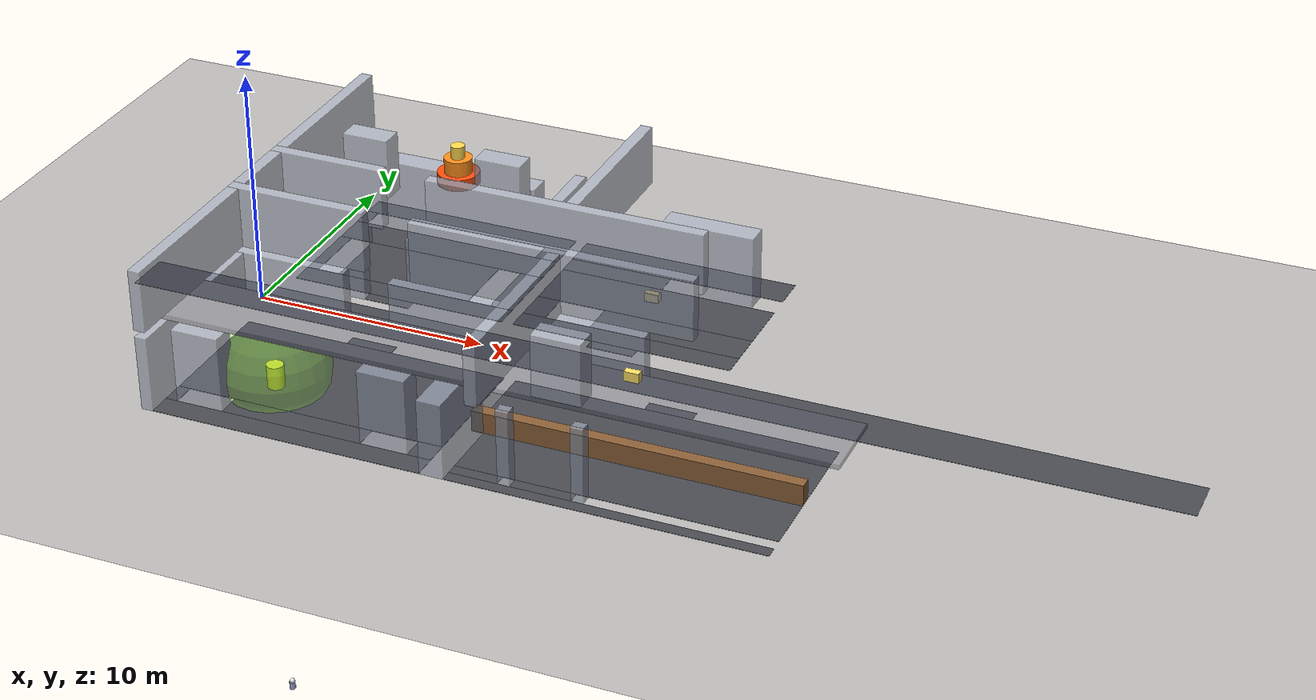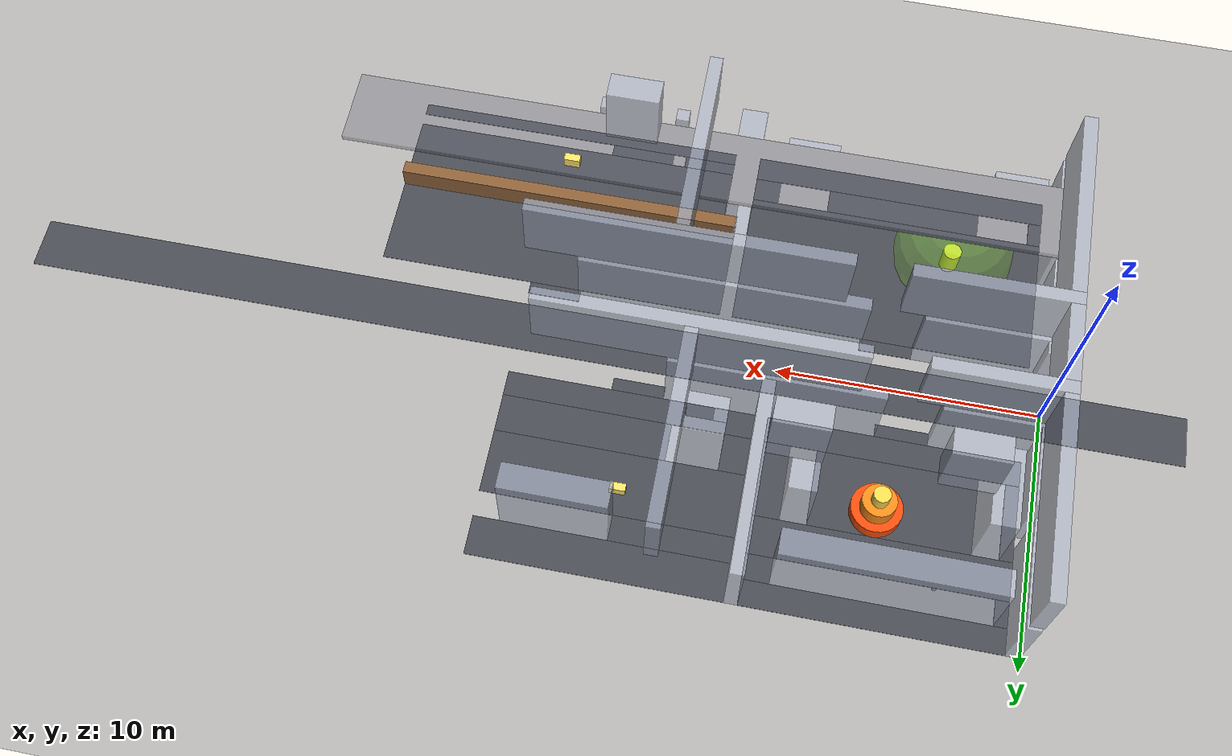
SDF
<sdf version="1.9">
 <world name="living_map_fire">
  <model name="ground">
   <static>true</static>
   <link name="l">
    <collision name="c"><geometry><plane><normal>0 0 1</normal><size>120 80</size></plane></geometry></collision>
    <visual name="v">
     <geometry><plane><normal>0 0 1</normal><size>120 80</size></plane></geometry>
     <material><ambient>0.16 0.17 0.2 1.0</ambient><diffuse>0.16 0.17 0.2 1.0</diffuse></material>
    </visual>
   </link>
  </model>
  <model name="slab0_0">
   <static>true</static>
   <pose>6.250 -9.000 0.010 0 0 0</pose>
   <link name="l">
    <collision name="c"><geometry><box><size>11.500 1.000 0.020</size></box></geometry></collision>
    <visual name="v">
     <geometry><box><size>11.500 1.000 0.020</size></box></geometry>
     <material><ambient>0.28 0.29 0.32 1.0</ambient><diffuse>0.28 0.29 0.32 1.0</diffuse></material>
    </visual>
   </link>
  </model>
  <model name="slab0_1">
   <static>true</static>
   <pose>19.500 -9.250 0.010 0 0 0</pose>
   <link name="l">
    <collision name="c"><geometry><box><size>13.000 0.500 0.020</size></box></geometry></collision>
    <visual name="v">
     <geometry><box><size>13.000 0.500 0.020</size></box></geometry>
     <material><ambient>0.28 0.29 0.32 1.0</ambient><diffuse>0.28 0.29 0.32 1.0</diffuse></material>
    </visual>
   </link>
  </model>
  <model name="slab0_4">
   <static>true</static>
   <pose>14.000 -8.750 0.010 0 0 0</pose>
   <link name="l">
    <collision name="c"><geometry><box><size>2.000 0.500 0.020</size></box></geometry></collision>
    <visual name="v">
     <geometry><box><size>2.000 0.500 0.020</size></box></geometry>
     <material><ambient>0.28 0.29 0.32 1.0</ambient><diffuse>0.28 0.29 0.32 1.0</diffuse></material>
    </visual>
   </link>
  </model>
  <model name="slab0_5">
   <static>true</static>
   <pose>16.750 -8.750 0.010 0 0 0</pose>
   <link name="l">
    <collision name="c"><geometry><box><size>2.500 0.500 0.020</size></box></geometry></collision>
    <visual name="v">
     <geometry><box><size>2.500 0.500 0.020</size></box></geometry>
     <material><ambient>0.28 0.29 0.32 1.0</ambient><diffuse>0.28 0.29 0.32 1.0</diffuse></material>
    </visual>
   </link>
  </model>
  <model name="slab0_9">
   <static>true</static>
   <pose>0.750 -8.000 0.010 0 0 0</pose>
   <link name="l">
    <collision name="c"><geometry><box><size>0.500 1.000 0.020</size></box></geometry></collision>
    <visual name="v">
     <geometry><box><size>0.500 1.000 0.020</size></box></geometry>
     <material><ambient>0.28 0.29 0.32 1.0</ambient><diffuse>0.28 0.29 0.32 1.0</diffuse></material>
    </visual>
   </link>
  </model>
  <model name="slab0_10">
   <static>true</static>
   <pose>6.000 -8.000 0.010 0 0 0</pose>
   <link name="l">
    <collision name="c"><geometry><box><size>6.000 1.000 0.020</size></box></geometry></collision>
    <visual name="v">
     <geometry><box><size>6.000 1.000 0.020</size></box></geometry>
     <material><ambient>0.28 0.29 0.32 1.0</ambient><diffuse>0.28 0.29 0.32 1.0</diffuse></material>
    </visual>
   </link>
  </model>
  <model name="slab0_11">
   <static>true</static>
   <pose>11.500 -8.000 0.010 0 0 0</pose>
   <link name="l">
    <collision name="c"><geometry><box><size>1.000 1.000 0.020</size></box></geometry></collision>
    <visual name="v">
     <geometry><box><size>1.000 1.000 0.020</size></box></geometry>
     <material><ambient>0.28 0.29 0.32 1.0</ambient><diffuse>0.28 0.29 0.32 1.0</diffuse></material>
    </visual>
   </link>
  </model>
  <model name="slab0_12">
   <static>true</static>
   <pose>19.500 -7.250 0.010 0 0 0</pose>
   <link name="l">
    <collision name="c"><geometry><box><size>13.000 2.500 0.020</size></box></geometry></collision>
    <visual name="v">
     <geometry><box><size>13.000 2.500 0.020</size></box></geometry>
     <material><ambient>0.28 0.29 0.32 1.0</ambient><diffuse>0.28 0.29 0.32 1.0</diffuse></material>
    </visual>
   </link>
  </model>
  <model name="slab0_16">
   <static>true</static>
   <pose>6.250 -4.750 0.010 0 0 0</pose>
   <link name="l">
    <collision name="c"><geometry><box><size>11.500 5.500 0.020</size></box></geometry></collision>
    <visual name="v">
     <geometry><box><size>11.500 5.500 0.020</size></box></geometry>
     <material><ambient>0.28 0.29 0.32 1.0</ambient><diffuse>0.28 0.29 0.32 1.0</diffuse></material>
    </visual>
   </link>
  </model>
  <model name="slab0_17">
   <static>true</static>
   <pose>19.250 -4.000 0.010 0 0 0</pose>
   <link name="l">
    <collision name="c"><geometry><box><size>13.500 4.000 0.020</size></box></geometry></collision>
    <visual name="v">
     <geometry><box><size>13.500 4.000 0.020</size></box></geometry>
     <material><ambient>0.28 0.29 0.32 1.0</ambient><diffuse>0.28 0.29 0.32 1.0</diffuse></material>
    </visual>
   </link>
  </model>
  <model name="slab0_21">
   <static>true</static>
   <pose>6.000 -1.750 0.010 0 0 0</pose>
   <link name="l">
    <collision name="c"><geometry><box><size>2.000 0.500 0.020</size></box></geometry></collision>
    <visual name="v">
     <geometry><box><size>2.000 0.500 0.020</size></box></geometry>
     <material><ambient>0.28 0.29 0.32 1.0</ambient><diffuse>0.28 0.29 0.32 1.0</diffuse></material>
    </visual>
   </link>
  </model>
  <model name="slab0_22">
   <static>true</static>
   <pose>19.000 -1.750 0.010 0 0 0</pose>
   <link name="l">
    <collision name="c"><geometry><box><size>2.000 0.500 0.020</size></box></geometry></collision>
    <visual name="v">
     <geometry><box><size>2.000 0.500 0.020</size></box></geometry>
     <material><ambient>0.28 0.29 0.32 1.0</ambient><diffuse>0.28 0.29 0.32 1.0</diffuse></material>
    </visual>
   </link>
  </model>
  <model name="slab0_26">
   <static>true</static>
   <pose>17.000 0.000 0.010 0 0 0</pose>
   <link name="l">
    <collision name="c"><geometry><box><size>45.000 2.000 0.020</size></box></geometry></collision>
    <visual name="v">
     <geometry><box><size>45.000 2.000 0.020</size></box></geometry>
     <material><ambient>0.28 0.29 0.32 1.0</ambient><diffuse>0.28 0.29 0.32 1.0</diffuse></material>
    </visual>
   </link>
  </model>
  <model name="slab0_29">
   <static>true</static>
   <pose>5.000 1.750 0.010 0 0 0</pose>
   <link name="l">
    <collision name="c"><geometry><box><size>2.000 0.500 0.020</size></box></geometry></collision>
    <visual name="v">
     <geometry><box><size>2.000 0.500 0.020</size></box></geometry>
     <material><ambient>0.28 0.29 0.32 1.0</ambient><diffuse>0.28 0.29 0.32 1.0</diffuse></material>
    </visual>
   </link>
  </model>
  <model name="slab0_30">
   <static>true</static>
   <pose>15.000 1.750 0.010 0 0 0</pose>
   <link name="l">
    <collision name="c"><geometry><box><size>2.000 0.500 0.020</size></box></geometry></collision>
    <visual name="v">
     <geometry><box><size>2.000 0.500 0.020</size></box></geometry>
     <material><ambient>0.28 0.29 0.32 1.0</ambient><diffuse>0.28 0.29 0.32 1.0</diffuse></material>
    </visual>
   </link>
  </model>
  <model name="slab0_33">
   <static>true</static>
   <pose>5.250 2.500 0.010 0 0 0</pose>
   <link name="l">
    <collision name="c"><geometry><box><size>9.500 1.000 0.020</size></box></geometry></collision>
    <visual name="v">
     <geometry><box><size>9.500 1.000 0.020</size></box></geometry>
     <material><ambient>0.28 0.29 0.32 1.0</ambient><diffuse>0.28 0.29 0.32 1.0</diffuse></material>
    </visual>
   </link>
  </model>
  <model name="slab0_34">
   <static>true</static>
   <pose>15.250 2.500 0.010 0 0 0</pose>
   <link name="l">
    <collision name="c"><geometry><box><size>9.500 1.000 0.020</size></box></geometry></collision>
    <visual name="v">
     <geometry><box><size>9.500 1.000 0.020</size></box></geometry>
     <material><ambient>0.28 0.29 0.32 1.0</ambient><diffuse>0.28 0.29 0.32 1.0</diffuse></material>
    </visual>
   </link>
  </model>
  <model name="slab0_37">
   <static>true</static>
   <pose>0.750 4.500 0.010 0 0 0</pose>
   <link name="l">
    <collision name="c"><geometry><box><size>0.500 3.000 0.020</size></box></geometry></collision>
    <visual name="v">
     <geometry><box><size>0.500 3.000 0.020</size></box></geometry>
     <material><ambient>0.28 0.29 0.32 1.0</ambient><diffuse>0.28 0.29 0.32 1.0</diffuse></material>
    </visual>
   </link>
  </model>
  <model name="slab0_38">
   <static>true</static>
   <pose>5.000 4.500 0.010 0 0 0</pose>
   <link name="l">
    <collision name="c"><geometry><box><size>6.000 3.000 0.020</size></box></geometry></collision>
    <visual name="v">
     <geometry><box><size>6.000 3.000 0.020</size></box></geometry>
     <material><ambient>0.28 0.29 0.32 1.0</ambient><diffuse>0.28 0.29 0.32 1.0</diffuse></material>
    </visual>
   </link>
  </model>
  <model name="slab0_39">
   <static>true</static>
   <pose>9.500 4.500 0.010 0 0 0</pose>
   <link name="l">
    <collision name="c"><geometry><box><size>1.000 3.000 0.020</size></box></geometry></collision>
    <visual name="v">
     <geometry><box><size>1.000 3.000 0.020</size></box></geometry>
     <material><ambient>0.28 0.29 0.32 1.0</ambient><diffuse>0.28 0.29 0.32 1.0</diffuse></material>
    </visual>
   </link>
  </model>
  <model name="slab0_40">
   <static>true</static>
   <pose>11.000 3.750 0.010 0 0 0</pose>
   <link name="l">
    <collision name="c"><geometry><box><size>1.000 1.500 0.020</size></box></geometry></collision>
    <visual name="v">
     <geometry><box><size>1.000 1.500 0.020</size></box></geometry>
     <material><ambient>0.28 0.29 0.32 1.0</ambient><diffuse>0.28 0.29 0.32 1.0</diffuse></material>
    </visual>
   </link>
  </model>
  <model name="slab0_41">
   <static>true</static>
   <pose>16.750 3.750 0.010 0 0 0</pose>
   <link name="l">
    <collision name="c"><geometry><box><size>6.500 1.500 0.020</size></box></geometry></collision>
    <visual name="v">
     <geometry><box><size>6.500 1.500 0.020</size></box></geometry>
     <material><ambient>0.28 0.29 0.32 1.0</ambient><diffuse>0.28 0.29 0.32 1.0</diffuse></material>
    </visual>
   </link>
  </model>
  <model name="slab0_49">
   <static>true</static>
   <pose>15.250 5.750 0.010 0 0 0</pose>
   <link name="l">
    <collision name="c"><geometry><box><size>9.500 2.500 0.020</size></box></geometry></collision>
    <visual name="v">
     <geometry><box><size>9.500 2.500 0.020</size></box></geometry>
     <material><ambient>0.28 0.29 0.32 1.0</ambient><diffuse>0.28 0.29 0.32 1.0</diffuse></material>
    </visual>
   </link>
  </model>
  <model name="slab0_52">
   <static>true</static>
   <pose>5.250 6.750 0.010 0 0 0</pose>
   <link name="l">
    <collision name="c"><geometry><box><size>9.500 1.500 0.020</size></box></geometry></collision>
    <visual name="v">
     <geometry><box><size>9.500 1.500 0.020</size></box></geometry>
     <material><ambient>0.28 0.29 0.32 1.0</ambient><diffuse>0.28 0.29 0.32 1.0</diffuse></material>
    </visual>
   </link>
  </model>
  <model name="slab0_53">
   <static>true</static>
   <pose>12.750 7.500 0.010 0 0 0</pose>
   <link name="l">
    <collision name="c"><geometry><box><size>4.500 1.000 0.020</size></box></geometry></collision>
    <visual name="v">
     <geometry><box><size>4.500 1.000 0.020</size></box></geometry>
     <material><ambient>0.28 0.29 0.32 1.0</ambient><diffuse>0.28 0.29 0.32 1.0</diffuse></material>
    </visual>
   </link>
  </model>
  <model name="slab0_55">
   <static>true</static>
   <pose>0.750 8.000 0.010 0 0 0</pose>
   <link name="l">
    <collision name="c"><geometry><box><size>0.500 1.000 0.020</size></box></geometry></collision>
    <visual name="v">
     <geometry><box><size>0.500 1.000 0.020</size></box></geometry>
     <material><ambient>0.28 0.29 0.32 1.0</ambient><diffuse>0.28 0.29 0.32 1.0</diffuse></material>
    </visual>
   </link>
  </model>
  <model name="slab0_56">
   <static>true</static>
   <pose>9.500 8.000 0.010 0 0 0</pose>
   <link name="l">
    <collision name="c"><geometry><box><size>1.000 1.000 0.020</size></box></geometry></collision>
    <visual name="v">
     <geometry><box><size>1.000 1.000 0.020</size></box></geometry>
     <material><ambient>0.28 0.29 0.32 1.0</ambient><diffuse>0.28 0.29 0.32 1.0</diffuse></material>
    </visual>
   </link>
  </model>
  <model name="slab0_57">
   <static>true</static>
   <pose>15.250 8.750 0.010 0 0 0</pose>
   <link name="l">
    <collision name="c"><geometry><box><size>9.500 1.500 0.020</size></box></geometry></collision>
    <visual name="v">
     <geometry><box><size>9.500 1.500 0.020</size></box></geometry>
     <material><ambient>0.28 0.29 0.32 1.0</ambient><diffuse>0.28 0.29 0.32 1.0</diffuse></material>
    </visual>
   </link>
  </model>
  <model name="slab0_60">
   <static>true</static>
   <pose>5.250 9.000 0.010 0 0 0</pose>
   <link name="l">
    <collision name="c"><geometry><box><size>9.500 1.000 0.020</size></box></geometry></collision>
    <visual name="v">
     <geometry><box><size>9.500 1.000 0.020</size></box></geometry>
     <material><ambient>0.28 0.29 0.32 1.0</ambient><diffuse>0.28 0.29 0.32 1.0</diffuse></material>
    </visual>
   </link>
  </model>
  <model name="wall0_1">
   <static>true</static>
   <pose>0.250 -7.500 1.600 0 0 0</pose>
   <link name="l">
    <collision name="c"><geometry><box><size>0.500 4.000 3.200</size></box></geometry></collision>
    <visual name="v">
     <geometry><box><size>0.500 4.000 3.200</size></box></geometry>
     <material><ambient>0.62 0.65 0.72 0.75</ambient><diffuse>0.62 0.65 0.72 0.75</diffuse></material>
    </visual>
   </link>
  </model>
  <model name="wall0_2">
   <static>true</static>
   <pose>12.500 -7.750 1.600 0 0 0</pose>
   <link name="l">
    <collision name="c"><geometry><box><size>1.000 3.500 3.200</size></box></geometry></collision>
    <visual name="v">
     <geometry><box><size>1.000 3.500 3.200</size></box></geometry>
     <material><ambient>0.62 0.65 0.72 0.75</ambient><diffuse>0.62 0.65 0.72 0.75</diffuse></material>
    </visual>
   </link>
  </model>
  <model name="wall0_6">
   <static>true</static>
   <pose>15.250 -8.750 1.600 0 0 0</pose>
   <link name="l">
    <collision name="c"><geometry><box><size>0.500 0.500 3.200</size></box></geometry></collision>
    <visual name="v">
     <geometry><box><size>0.500 0.500 3.200</size></box></geometry>
     <material><ambient>0.62 0.65 0.72 0.75</ambient><diffuse>0.62 0.65 0.72 0.75</diffuse></material>
    </visual>
   </link>
  </model>
  <model name="wall0_7">
   <static>true</static>
   <pose>18.250 -8.750 1.600 0 0 0</pose>
   <link name="l">
    <collision name="c"><geometry><box><size>0.500 0.500 3.200</size></box></geometry></collision>
    <visual name="v">
     <geometry><box><size>0.500 0.500 3.200</size></box></geometry>
     <material><ambient>0.62 0.65 0.72 0.75</ambient><diffuse>0.62 0.65 0.72 0.75</diffuse></material>
    </visual>
   </link>
  </model>
  <model name="wall0_10">
   <static>true</static>
   <pose>2.000 -8.000 1.600 0 0 0</pose>
   <link name="l">
    <collision name="c"><geometry><box><size>2.000 1.000 3.200</size></box></geometry></collision>
    <visual name="v">
     <geometry><box><size>2.000 1.000 3.200</size></box></geometry>
     <material><ambient>0.62 0.65 0.72 0.75</ambient><diffuse>0.62 0.65 0.72 0.75</diffuse></material>
    </visual>
   </link>
  </model>
  <model name="wall0_11">
   <static>true</static>
   <pose>10.000 -8.000 1.600 0 0 0</pose>
   <link name="l">
    <collision name="c"><geometry><box><size>2.000 1.000 3.200</size></box></geometry></collision>
    <visual name="v">
     <geometry><box><size>2.000 1.000 3.200</size></box></geometry>
     <material><ambient>0.62 0.65 0.72 0.75</ambient><diffuse>0.62 0.65 0.72 0.75</diffuse></material>
    </visual>
   </link>
  </model>
  <model name="wall0_12">
   <static>true</static>
   <pose>12.250 -4.000 1.600 0 0 0</pose>
   <link name="l">
    <collision name="c"><geometry><box><size>0.500 4.000 3.200</size></box></geometry></collision>
    <visual name="v">
     <geometry><box><size>0.500 4.000 3.200</size></box></geometry>
     <material><ambient>0.62 0.65 0.72 0.75</ambient><diffuse>0.62 0.65 0.72 0.75</diffuse></material>
    </visual>
   </link>
  </model>
  <model name="wall0_15">
   <static>true</static>
   <pose>0.250 -3.500 1.600 0 0 0</pose>
   <link name="l">
    <collision name="c"><geometry><box><size>0.500 3.000 3.200</size></box></geometry></collision>
    <visual name="v">
     <geometry><box><size>0.500 3.000 3.200</size></box></geometry>
     <material><ambient>0.62 0.65 0.72 0.75</ambient><diffuse>0.62 0.65 0.72 0.75</diffuse></material>
    </visual>
   </link>
  </model>
  <model name="wall0_16">
   <static>true</static>
   <pose>2.500 -1.750 1.600 0 0 0</pose>
   <link name="l">
    <collision name="c"><geometry><box><size>5.000 0.500 3.200</size></box></geometry></collision>
    <visual name="v">
     <geometry><box><size>5.000 0.500 3.200</size></box></geometry>
     <material><ambient>0.62 0.65 0.72 0.75</ambient><diffuse>0.62 0.65 0.72 0.75</diffuse></material>
    </visual>
   </link>
  </model>
  <model name="wall0_17">
   <static>true</static>
   <pose>12.500 -1.750 1.600 0 0 0</pose>
   <link name="l">
    <collision name="c"><geometry><box><size>11.000 0.500 3.200</size></box></geometry></collision>
    <visual name="v">
     <geometry><box><size>11.000 0.500 3.200</size></box></geometry>
     <material><ambient>0.62 0.65 0.72 0.75</ambient><diffuse>0.62 0.65 0.72 0.75</diffuse></material>
    </visual>
   </link>
  </model>
  <model name="wall0_21">
   <static>true</static>
   <pose>0.250 -1.250 1.600 0 0 0</pose>
   <link name="l">
    <collision name="c"><geometry><box><size>0.500 0.500 3.200</size></box></geometry></collision>
    <visual name="v">
     <geometry><box><size>0.500 0.500 3.200</size></box></geometry>
     <material><ambient>0.62 0.65 0.72 0.75</ambient><diffuse>0.62 0.65 0.72 0.75</diffuse></material>
    </visual>
   </link>
  </model>
  <model name="wall0_23">
   <static>true</static>
   <pose>0.250 1.250 1.600 0 0 0</pose>
   <link name="l">
    <collision name="c"><geometry><box><size>0.500 0.500 3.200</size></box></geometry></collision>
    <visual name="v">
     <geometry><box><size>0.500 0.500 3.200</size></box></geometry>
     <material><ambient>0.62 0.65 0.72 0.75</ambient><diffuse>0.62 0.65 0.72 0.75</diffuse></material>
    </visual>
   </link>
  </model>
  <model name="wall0_24">
   <static>true</static>
   <pose>2.000 1.750 1.600 0 0 0</pose>
   <link name="l">
    <collision name="c"><geometry><box><size>4.000 0.500 3.200</size></box></geometry></collision>
    <visual name="v">
     <geometry><box><size>4.000 0.500 3.200</size></box></geometry>
     <material><ambient>0.62 0.65 0.72 0.75</ambient><diffuse>0.62 0.65 0.72 0.75</diffuse></material>
    </visual>
   </link>
  </model>
  <model name="wall0_25">
   <static>true</static>
   <pose>10.000 1.750 1.600 0 0 0</pose>
   <link name="l">
    <collision name="c"><geometry><box><size>8.000 0.500 3.200</size></box></geometry></collision>
    <visual name="v">
     <geometry><box><size>8.000 0.500 3.200</size></box></geometry>
     <material><ambient>0.62 0.65 0.72 0.75</ambient><diffuse>0.62 0.65 0.72 0.75</diffuse></material>
    </visual>
   </link>
  </model>
  <model name="wall0_29">
   <static>true</static>
   <pose>0.250 3.500 1.600 0 0 0</pose>
   <link name="l">
    <collision name="c"><geometry><box><size>0.500 3.000 3.200</size></box></geometry></collision>
    <visual name="v">
     <geometry><box><size>0.500 3.000 3.200</size></box></geometry>
     <material><ambient>0.62 0.65 0.72 0.75</ambient><diffuse>0.62 0.65 0.72 0.75</diffuse></material>
    </visual>
   </link>
  </model>
  <model name="wall0_30">
   <static>true</static>
   <pose>10.250 5.750 1.600 0 0 0</pose>
   <link name="l">
    <collision name="c"><geometry><box><size>0.500 7.500 3.200</size></box></geometry></collision>
    <visual name="v">
     <geometry><box><size>0.500 7.500 3.200</size></box></geometry>
     <material><ambient>0.62 0.65 0.72 0.75</ambient><diffuse>0.62 0.65 0.72 0.75</diffuse></material>
    </visual>
   </link>
  </model>
  <model name="wall0_34">
   <static>true</static>
   <pose>1.500 4.500 1.600 0 0 0</pose>
   <link name="l">
    <collision name="c"><geometry><box><size>1.000 3.000 3.200</size></box></geometry></collision>
    <visual name="v">
     <geometry><box><size>1.000 3.000 3.200</size></box></geometry>
     <material><ambient>0.62 0.65 0.72 0.75</ambient><diffuse>0.62 0.65 0.72 0.75</diffuse></material>
    </visual>
   </link>
  </model>
  <model name="wall0_35">
   <static>true</static>
   <pose>8.500 4.500 1.600 0 0 0</pose>
   <link name="l">
    <collision name="c"><geometry><box><size>1.000 3.000 3.200</size></box></geometry></collision>
    <visual name="v">
     <geometry><box><size>1.000 3.000 3.200</size></box></geometry>
     <material><ambient>0.62 0.65 0.72 0.75</ambient><diffuse>0.62 0.65 0.72 0.75</diffuse></material>
    </visual>
   </link>
  </model>
  <model name="wall0_36">
   <static>true</static>
   <pose>12.500 3.250 1.600 0 0 0</pose>
   <link name="l">
    <collision name="c"><geometry><box><size>2.000 0.500 3.200</size></box></geometry></collision>
    <visual name="v">
     <geometry><box><size>2.000 0.500 3.200</size></box></geometry>
     <material><ambient>0.62 0.65 0.72 0.75</ambient><diffuse>0.62 0.65 0.72 0.75</diffuse></material>
    </visual>
   </link>
  </model>
  <model name="wall0_41">
   <static>true</static>
   <pose>11.750 3.750 1.600 0 0 0</pose>
   <link name="l">
    <collision name="c"><geometry><box><size>0.500 0.500 3.200</size></box></geometry></collision>
    <visual name="v">
     <geometry><box><size>0.500 0.500 3.200</size></box></geometry>
     <material><ambient>0.62 0.65 0.72 0.75</ambient><diffuse>0.62 0.65 0.72 0.75</diffuse></material>
    </visual>
   </link>
  </model>
  <model name="wall0_42">
   <static>true</static>
   <pose>13.250 3.750 1.600 0 0 0</pose>
   <link name="l">
    <collision name="c"><geometry><box><size>0.500 0.500 3.200</size></box></geometry></collision>
    <visual name="v">
     <geometry><box><size>0.500 0.500 3.200</size></box></geometry>
     <material><ambient>0.62 0.65 0.72 0.75</ambient><diffuse>0.62 0.65 0.72 0.75</diffuse></material>
    </visual>
   </link>
  </model>
  <model name="wall0_49">
   <static>true</static>
   <pose>12.500 4.250 1.600 0 0 0</pose>
   <link name="l">
    <collision name="c"><geometry><box><size>2.000 0.500 3.200</size></box></geometry></collision>
    <visual name="v">
     <geometry><box><size>2.000 0.500 3.200</size></box></geometry>
     <material><ambient>0.62 0.65 0.72 0.75</ambient><diffuse>0.62 0.65 0.72 0.75</diffuse></material>
    </visual>
   </link>
  </model>
  <model name="wall0_54">
   <static>true</static>
   <pose>0.250 7.500 1.600 0 0 0</pose>
   <link name="l">
    <collision name="c"><geometry><box><size>0.500 4.000 3.200</size></box></geometry></collision>
    <visual name="v">
     <geometry><box><size>0.500 4.000 3.200</size></box></geometry>
     <material><ambient>0.62 0.65 0.72 0.75</ambient><diffuse>0.62 0.65 0.72 0.75</diffuse></material>
    </visual>
   </link>
  </model>
  <model name="wall0_55">
   <static>true</static>
   <pose>17.000 7.500 1.600 0 0 0</pose>
   <link name="l">
    <collision name="c"><geometry><box><size>4.000 1.000 3.200</size></box></geometry></collision>
    <visual name="v">
     <geometry><box><size>4.000 1.000 3.200</size></box></geometry>
     <material><ambient>0.62 0.65 0.72 0.75</ambient><diffuse>0.62 0.65 0.72 0.75</diffuse></material>
    </visual>
   </link>
  </model>
  <model name="wall0_56">
   <static>true</static>
   <pose>5.000 8.000 1.600 0 0 0</pose>
   <link name="l">
    <collision name="c"><geometry><box><size>8.000 1.000 3.200</size></box></geometry></collision>
    <visual name="v">
     <geometry><box><size>8.000 1.000 3.200</size></box></geometry>
     <material><ambient>0.62 0.65 0.72 0.75</ambient><diffuse>0.62 0.65 0.72 0.75</diffuse></material>
    </visual>
   </link>
  </model>
  <model name="rubble0_0">
   <static>true</static>
   <pose>19.250 -5.750 0.450 0 0 0</pose>
   <link name="l">
    <collision name="c"><geometry><box><size>13.500 0.500 0.900</size></box></geometry></collision>
    <visual name="v">
     <geometry><box><size>13.500 0.500 0.900</size></box></geometry>
     <material><ambient>0.55 0.38 0.22 1.0</ambient><diffuse>0.55 0.38 0.22 1.0</diffuse></material>
    </visual>
   </link>
  </model>
  <model name="slab1_1">
   <static>true</static>
   <pose>14.000 -6.500 3.400 0 0 0</pose>
   <link name="l">
    <collision name="c"><geometry><box><size>28.000 3.000 0.200</size></box></geometry></collision>
    <visual name="v">
     <geometry><box><size>28.000 3.000 0.200</size></box></geometry>
     <material><ambient>0.36 0.37 0.42 0.6</ambient><diffuse>0.36 0.37 0.42 0.6</diffuse></material>
    </visual>
   </link>
  </model>
  <model name="wall1_1">
   <static>true</static>
   <pose>0.250 -5.750 4.800 0 0 0</pose>
   <link name="l">
    <collision name="c"><geometry><box><size>0.500 7.500 2.600</size></box></geometry></collision>
    <visual name="v">
     <geometry><box><size>0.500 7.500 2.600</size></box></geometry>
     <material><ambient>0.62 0.65 0.72 0.75</ambient><diffuse>0.62 0.65 0.72 0.75</diffuse></material>
    </visual>
   </link>
  </model>
  <model name="wall1_2">
   <static>true</static>
   <pose>14.250 -5.750 4.800 0 0 0</pose>
   <link name="l">
    <collision name="c"><geometry><box><size>0.500 7.500 2.600</size></box></geometry></collision>
    <visual name="v">
     <geometry><box><size>0.500 7.500 2.600</size></box></geometry>
     <material><ambient>0.62 0.65 0.72 0.75</ambient><diffuse>0.62 0.65 0.72 0.75</diffuse></material>
    </visual>
   </link>
  </model>
  <model name="wall1_5">
   <static>true</static>
   <pose>17.000 -7.500 4.800 0 0 0</pose>
   <link name="l">
    <collision name="c"><geometry><box><size>2.000 1.000 2.600</size></box></geometry></collision>
    <visual name="v">
     <geometry><box><size>2.000 1.000 2.600</size></box></geometry>
     <material><ambient>0.62 0.65 0.72 0.75</ambient><diffuse>0.62 0.65 0.72 0.75</diffuse></material>
    </visual>
   </link>
  </model>
  <model name="wall1_7">
   <static>true</static>
   <pose>3.000 -1.750 4.800 0 0 0</pose>
   <link name="l">
    <collision name="c"><geometry><box><size>6.000 0.500 2.600</size></box></geometry></collision>
    <visual name="v">
     <geometry><box><size>6.000 0.500 2.600</size></box></geometry>
     <material><ambient>0.62 0.65 0.72 0.75</ambient><diffuse>0.62 0.65 0.72 0.75</diffuse></material>
    </visual>
   </link>
  </model>
  <model name="wall1_8">
   <static>true</static>
   <pose>14.000 -1.750 4.800 0 0 0</pose>
   <link name="l">
    <collision name="c"><geometry><box><size>12.000 0.500 2.600</size></box></geometry></collision>
    <visual name="v">
     <geometry><box><size>12.000 0.500 2.600</size></box></geometry>
     <material><ambient>0.62 0.65 0.72 0.75</ambient><diffuse>0.62 0.65 0.72 0.75</diffuse></material>
    </visual>
   </link>
  </model>
  <model name="wall1_11">
   <static>true</static>
   <pose>0.250 0.000 4.800 0 0 0</pose>
   <link name="l">
    <collision name="c"><geometry><box><size>0.500 3.000 2.600</size></box></geometry></collision>
    <visual name="v">
     <geometry><box><size>0.500 3.000 2.600</size></box></geometry>
     <material><ambient>0.62 0.65 0.72 0.75</ambient><diffuse>0.62 0.65 0.72 0.75</diffuse></material>
    </visual>
   </link>
  </model>
  <model name="wall1_13">
   <static>true</static>
   <pose>2.500 1.750 4.800 0 0 0</pose>
   <link name="l">
    <collision name="c"><geometry><box><size>5.000 0.500 2.600</size></box></geometry></collision>
    <visual name="v">
     <geometry><box><size>5.000 0.500 2.600</size></box></geometry>
     <material><ambient>0.62 0.65 0.72 0.75</ambient><diffuse>0.62 0.65 0.72 0.75</diffuse></material>
    </visual>
   </link>
  </model>
  <model name="wall1_14">
   <static>true</static>
   <pose>13.000 1.750 4.800 0 0 0</pose>
   <link name="l">
    <collision name="c"><geometry><box><size>12.000 0.500 2.600</size></box></geometry></collision>
    <visual name="v">
     <geometry><box><size>12.000 0.500 2.600</size></box></geometry>
     <material><ambient>0.62 0.65 0.72 0.75</ambient><diffuse>0.62 0.65 0.72 0.75</diffuse></material>
    </visual>
   </link>
  </model>
  <model name="wall1_17">
   <static>true</static>
   <pose>0.250 5.750 4.800 0 0 0</pose>
   <link name="l">
    <collision name="c"><geometry><box><size>0.500 7.500 2.600</size></box></geometry></collision>
    <visual name="v">
     <geometry><box><size>0.500 7.500 2.600</size></box></geometry>
     <material><ambient>0.62 0.65 0.72 0.75</ambient><diffuse>0.62 0.65 0.72 0.75</diffuse></material>
    </visual>
   </link>
  </model>
  <model name="wall1_18">
   <static>true</static>
   <pose>13.250 5.750 4.800 0 0 0</pose>
   <link name="l">
    <collision name="c"><geometry><box><size>0.500 7.500 2.600</size></box></geometry></collision>
    <visual name="v">
     <geometry><box><size>0.500 7.500 2.600</size></box></geometry>
     <material><ambient>0.62 0.65 0.72 0.75</ambient><diffuse>0.62 0.65 0.72 0.75</diffuse></material>
    </visual>
   </link>
  </model>
  <model name="wall1_23">
   <static>true</static>
   <pose>3.000 4.500 4.800 0 0 0</pose>
   <link name="l">
    <collision name="c"><geometry><box><size>2.000 1.000 2.600</size></box></geometry></collision>
    <visual name="v">
     <geometry><box><size>2.000 1.000 2.600</size></box></geometry>
     <material><ambient>0.62 0.65 0.72 0.75</ambient><diffuse>0.62 0.65 0.72 0.75</diffuse></material>
    </visual>
   </link>
  </model>
  <model name="wall1_24">
   <static>true</static>
   <pose>9.000 4.500 4.800 0 0 0</pose>
   <link name="l">
    <collision name="c"><geometry><box><size>2.000 1.000 2.600</size></box></geometry></collision>
    <visual name="v">
     <geometry><box><size>2.000 1.000 2.600</size></box></geometry>
     <material><ambient>0.62 0.65 0.72 0.75</ambient><diffuse>0.62 0.65 0.72 0.75</diffuse></material>
    </visual>
   </link>
  </model>
  <model name="fire_2">
   <static>false</static>
   <pose>6.0 6.5 3.5 0 0 0</pose>
   <link name="l">
    <gravity>false</gravity>
    <inertial><mass>1</mass><inertia><ixx>0.1</ixx><iyy>0.1</iyy><izz>0.1</izz></inertia></inertial>
    <visual name="a">
     <pose>0 0 0.25 0 0 0</pose>
     <geometry><cylinder><radius>0.9</radius><length>0.5</length></cylinder></geometry>
     <material>
      <ambient>1 0.3 0.05 1.0</ambient>
      <diffuse>1 0.3 0.05 1.0</diffuse>
      <emissive>1 0.35 0.05 1</emissive>
     </material>
    </visual>
    <visual name="b">
     <pose>0 0 0.7 0 0 0</pose>
     <geometry><cylinder><radius>0.6</radius><length>0.9</length></cylinder></geometry>
     <material>
      <ambient>1 0.55 0.1 1.0</ambient>
      <diffuse>1 0.55 0.1 1.0</diffuse>
      <emissive>1 0.6 0.1 1</emissive>
     </material>
    </visual>
    <visual name="c">
     <pose>0 0 1.2 0 0 0</pose>
     <geometry><cylinder><radius>0.3</radius><length>1.0</length></cylinder></geometry>
     <material>
      <ambient>1 0.85 0.3 1.0</ambient>
      <diffuse>1 0.85 0.3 1.0</diffuse>
      <emissive>1 0.9 0.4 1</emissive>
     </material>
    </visual>
    <light type="point" name="fl2">
     <pose>0 0 1.2 0 0 0</pose>
     <diffuse>1 0.45 0.1 1</diffuse>
     <specular>1 0.4 0.1 1</specular>
     <attenuation>
      <range>9</range>
      <constant>0.3</constant>
      <linear>0.15</linear>
      <quadratic>0.03</quadratic>
     </attenuation>
     <cast_shadows>false</cast_shadows>
    </light>
   </link>
  </model>
  <model name="gas_tank_0">
   <static>true</static>
   <pose>4.000 -6.000 0.500 0 0 0</pose>
   <link name="l">
    <visual name="v">
     <geometry><cylinder><radius>0.35</radius><length>1.0</length></cylinder></geometry>
     <material><ambient>0.85 0.85 0.2 1.0</ambient><diffuse>0.85 0.85 0.2 1.0</diffuse></material>
    </visual>
   </link>
  </model>
  <model name="gas_cloud_0">
   <static>true</static>
   <pose>4.000 -6.000 1.000 0 0 0</pose>
   <link name="l">
    <visual name="v">
     <geometry><sphere><radius>2.3</radius></sphere></geometry>
     <material>
      <ambient>0.6 1 0.2 0.35</ambient>
      <diffuse>0.6 1 0.2 0.35</diffuse>
      <emissive>0.2 0.4 0.05 1</emissive>
     </material>
     <transparency>0.65</transparency>
    </visual>
   </link>
  </model>
  <model name="animal_0">
   <static>false</static>
   <pose>15.0 6.0 0.2 0 0 0</pose>
   <link name="l">
    <gravity>false</gravity>
    <inertial><mass>1</mass><inertia><ixx>0.1</ixx><iyy>0.1</iyy><izz>0.1</izz></inertia></inertial>
    <visual name="b">
     <geometry><box><size>0.6 0.3 0.4</size></box></geometry>
     <material><ambient>1 0.88 0.4 1.0</ambient><diffuse>1 0.88 0.4 1.0</diffuse></material>
    </visual>
   </link>
  </model>
  <model name="animal_1">
   <static>false</static>
   <pose>19.0 -5.5 3.7 0 0 0</pose>
   <link name="l">
    <gravity>false</gravity>
    <inertial><mass>1</mass><inertia><ixx>0.1</ixx><iyy>0.1</iyy><izz>0.1</izz></inertia></inertial>
    <visual name="b">
     <geometry><box><size>0.6 0.3 0.4</size></box></geometry>
     <material><ambient>1 0.88 0.4 1.0</ambient><diffuse>1 0.88 0.4 1.0</diffuse></material>
    </visual>
   </link>
  </model>
  <model name="bcn_p3_14">
   <static>false</static>
   <pose>0 0 -20 0 0 0</pose>
   <link name="l">
    <gravity>false</gravity>
    <inertial><mass>1</mass><inertia><ixx>0.1</ixx><iyy>0.1</iyy><izz>0.1</izz></inertia></inertial>
    <visual name="b">
     <geometry><cylinder><radius>0.14</radius><length>0.36</length></cylinder></geometry>
     <material>
      <ambient>0.6 0.66 0.78 1.0</ambient>
      <diffuse>0.6 0.66 0.78 1.0</diffuse>
      <emissive>0.6 0.66 0.78 1</emissive>
     </material>
    </visual>
    <visual name="t">
     <pose>0 0 0.24 0 0 0</pose>
     <geometry><sphere><radius>0.11</radius></sphere></geometry>
     <material><ambient>1 1 1 1.0</ambient><diffuse>1 1 1 1.0</diffuse><emissive>1 1 1 1</emissive></material>
    </visual>
   </link>
  </model>
  <model name="bcn_p3_15">
   <static>false</static>
   <pose>0 0 -20 0 0 0</pose>
   <link name="l">
    <gravity>false</gravity>
    <inertial><mass>1</mass><inertia><ixx>0.1</ixx><iyy>0.1</iyy><izz>0.1</izz></inertia></inertial>
    <visual name="b">
     <geometry><cylinder><radius>0.14</radius><length>0.36</length></cylinder></geometry>
     <material>
      <ambient>0.6 0.66 0.78 1.0</ambient>
      <diffuse>0.6 0.66 0.78 1.0</diffuse>
      <emissive>0.6 0.66 0.78 1</emissive>
     </material>
    </visual>
    <visual name="t">
     <pose>0 0 0.24 0 0 0</pose>
     <geometry><sphere><radius>0.11</radius></sphere></geometry>
     <material><ambient>1 1 1 1.0</ambient><diffuse>1 1 1 1.0</diffuse><emissive>1 1 1 1</emissive></material>
    </visual>
   </link>
  </model>
  <model name="bcn_p3_16">
   <static>false</static>
   <pose>0 0 -20 0 0 0</pose>
   <link name="l">
    <gravity>false</gravity>
    <inertial><mass>1</mass><inertia><ixx>0.1</ixx><iyy>0.1</iyy><izz>0.1</izz></inertia></inertial>
    <visual name="b">
     <geometry><cylinder><radius>0.14</radius><length>0.36</length></cylinder></geometry>
     <material>
      <ambient>0.6 0.66 0.78 1.0</ambient>
      <diffuse>0.6 0.66 0.78 1.0</diffuse>
      <emissive>0.6 0.66 0.78 1</emissive>
     </material>
    </visual>
    <visual name="t">
     <pose>0 0 0.24 0 0 0</pose>
     <geometry><sphere><radius>0.11</radius></sphere></geometry>
     <material><ambient>1 1 1 1.0</ambient><diffuse>1 1 1 1.0</diffuse><emissive>1 1 1 1</emissive></material>
    </visual>
   </link>
  </model>
  <model name="bcn_p3_17">
   <static>false</static>
   <pose>0 0 -20 0 0 0</pose>
   <link name="l">
    <gravity>false</gravity>
    <inertial><mass>1</mass><inertia><ixx>0.1</ixx><iyy>0.1</iyy><izz>0.1</izz></inertia></inertial>
    <visual name="b">
     <geometry><cylinder><radius>0.14</radius><length>0.36</length></cylinder></geometry>
     <material>
      <ambient>0.6 0.66 0.78 1.0</ambient>
      <diffuse>0.6 0.66 0.78 1.0</diffuse>
      <emissive>0.6 0.66 0.78 1</emissive>
     </material>
    </visual>
    <visual name="t">
     <pose>0 0 0.24 0 0 0</pose>
     <geometry><sphere><radius>0.11</radius></sphere></geometry>
     <material><ambient>1 1 1 1.0</ambient><diffuse>1 1 1 1.0</diffuse><emissive>1 1 1 1</emissive></material>
    </visual>
   </link>
  </model>
  <model name="bcn_p3_18">
   <static>false</static>
   <pose>0 0 -20 0 0 0</pose>
   <link name="l">
    <gravity>false</gravity>
    <inertial><mass>1</mass><inertia><ixx>0.1</ixx><iyy>0.1</iyy><izz>0.1</izz></inertia></inertial>
    <visual name="b">
     <geometry><cylinder><radius>0.14</radius><length>0.36</length></cylinder></geometry>
     <material>
      <ambient>0.6 0.66 0.78 1.0</ambient>
      <diffuse>0.6 0.66 0.78 1.0</diffuse>
      <emissive>0.6 0.66 0.78 1</emissive>
     </material>
    </visual>
    <visual name="t">
     <pose>0 0 0.24 0 0 0</pose>
     <geometry><sphere><radius>0.11</radius></sphere></geometry>
     <material><ambient>1 1 1 1.0</ambient><diffuse>1 1 1 1.0</diffuse><emissive>1 1 1 1</emissive></material>
    </visual>
   </link>
  </model>
  <model name="bcn_p3_19">
   <static>false</static>
   <pose>0 0 -20 0 0 0</pose>
   <link name="l">
    <gravity>false</gravity>
    <inertial><mass>1</mass><inertia><ixx>0.1</ixx><iyy>0.1</iyy><izz>0.1</izz></inertia></inertial>
    <visual name="b">
     <geometry><cylinder><radius>0.14</radius><length>0.36</length></cylinder></geometry>
     <material>
      <ambient>0.6 0.66 0.78 1.0</ambient>
      <diffuse>0.6 0.66 0.78 1.0</diffuse>
      <emissive>0.6 0.66 0.78 1</emissive>
     </material>
    </visual>
    <visual name="t">
     <pose>0 0 0.24 0 0 0</pose>
     <geometry><sphere><radius>0.11</radius></sphere></geometry>
     <material><ambient>1 1 1 1.0</ambient><diffuse>1 1 1 1.0</diffuse><emissive>1 1 1 1</emissive></material>
    </visual>
   </link>
  </model>
  <model name="bcn_p3_20">
   <static>false</static>
   <pose>0 0 -20 0 0 0</pose>
   <link name="l">
    <gravity>false</gravity>
    <inertial><mass>1</mass><inertia><ixx>0.1</ixx><iyy>0.1</iyy><izz>0.1</izz></inertia></inertial>
    <visual name="b">
     <geometry><cylinder><radius>0.14</radius><length>0.36</length></cylinder></geometry>
     <material>
      <ambient>0.6 0.66 0.78 1.0</ambient>
      <diffuse>0.6 0.66 0.78 1.0</diffuse>
      <emissive>0.6 0.66 0.78 1</emissive>
     </material>
    </visual>
    <visual name="t">
     <pose>0 0 0.24 0 0 0</pose>
     <geometry><sphere><radius>0.11</radius></sphere></geometry>
     <material><ambient>1 1 1 1.0</ambient><diffuse>1 1 1 1.0</diffuse><emissive>1 1 1 1</emissive></material>
    </visual>
   </link>
  </model>
  <model name="bcn_p3_21">
   <static>false</static>
   <pose>0 0 -20 0 0 0</pose>
   <link name="l">
    <gravity>false</gravity>
    <inertial><mass>1</mass><inertia><ixx>0.1</ixx><iyy>0.1</iyy><izz>0.1</izz></inertia></inertial>
    <visual name="b">
     <geometry><cylinder><radius>0.14</radius><length>0.36</length></cylinder></geometry>
     <material>
      <ambient>0.6 0.66 0.78 1.0</ambient>
      <diffuse>0.6 0.66 0.78 1.0</diffuse>
      <emissive>0.6 0.66 0.78 1</emissive>
     </material>
    </visual>
    <visual name="t">
     <pose>0 0 0.24 0 0 0</pose>
     <geometry><sphere><radius>0.11</radius></sphere></geometry>
     <material><ambient>1 1 1 1.0</ambient><diffuse>1 1 1 1.0</diffuse><emissive>1 1 1 1</emissive></material>
    </visual>
   </link>
  </model>
  <model name="bcn_p3_22">
   <static>false</static>
   <pose>0 0 -20 0 0 0</pose>
   <link name="l">
    <gravity>false</gravity>
    <inertial><mass>1</mass><inertia><ixx>0.1</ixx><iyy>0.1</iyy><izz>0.1</izz></inertia></inertial>
    <visual name="b">
     <geometry><cylinder><radius>0.14</radius><length>0.36</length></cylinder></geometry>
     <material>
      <ambient>0.6 0.66 0.78 1.0</ambient>
      <diffuse>0.6 0.66 0.78 1.0</diffuse>
      <emissive>0.6 0.66 0.78 1</emissive>
     </material>
    </visual>
    <visual name="t">
     <pose>0 0 0.24 0 0 0</pose>
     <geometry><sphere><radius>0.11</radius></sphere></geometry>
     <material><ambient>1 1 1 1.0</ambient><diffuse>1 1 1 1.0</diffuse><emissive>1 1 1 1</emissive></material>
    </visual>
   </link>
  </model>
  <model name="bcn_p3_23">
   <static>false</static>
   <pose>0 0 -20 0 0 0</pose>
   <link name="l">
    <gravity>false</gravity>
    <inertial><mass>1</mass><inertia><ixx>0.1</ixx><iyy>0.1</iyy><izz>0.1</izz></inertia></inertial>
    <visual name="b">
     <geometry><cylinder><radius>0.14</radius><length>0.36</length></cylinder></geometry>
     <material>
      <ambient>0.6 0.66 0.78 1.0</ambient>
      <diffuse>0.6 0.66 0.78 1.0</diffuse>
      <emissive>0.6 0.66 0.78 1</emissive>
     </material>
    </visual>
    <visual name="t">
     <pose>0 0 0.24 0 0 0</pose>
     <geometry><sphere><radius>0.11</radius></sphere></geometry>
     <material><ambient>1 1 1 1.0</ambient><diffuse>1 1 1 1.0</diffuse><emissive>1 1 1 1</emissive></material>
    </visual>
   </link>
  </model>
  <model name="bcn_p3_24">
   <static>false</static>
   <pose>0 0 -20 0 0 0</pose>
   <link name="l">
    <gravity>false</gravity>
    <inertial><mass>1</mass><inertia><ixx>0.1</ixx><iyy>0.1</iyy><izz>0.1</izz></inertia></inertial>
    <visual name="b">
     <geometry><cylinder><radius>0.14</radius><length>0.36</length></cylinder></geometry>
     <material>
      <ambient>0.6 0.66 0.78 1.0</ambient>
      <diffuse>0.6 0.66 0.78 1.0</diffuse>
      <emissive>0.6 0.66 0.78 1</emissive>
     </material>
    </visual>
    <visual name="t">
     <pose>0 0 0.24 0 0 0</pose>
     <geometry><sphere><radius>0.11</radius></sphere></geometry>
     <material><ambient>1 1 1 1.0</ambient><diffuse>1 1 1 1.0</diffuse><emissive>1 1 1 1</emissive></material>
    </visual>
   </link>
  </model>
  <model name="bcn_p3_25">
   <static>false</static>
   <pose>0 0 -20 0 0 0</pose>
   <link name="l">
    <gravity>false</gravity>
    <inertial><mass>1</mass><inertia><ixx>0.1</ixx><iyy>0.1</iyy><izz>0.1</izz></inertia></inertial>
    <visual name="b">
     <geometry><cylinder><radius>0.14</radius><length>0.36</length></cylinder></geometry>
     <material>
      <ambient>0.6 0.66 0.78 1.0</ambient>
      <diffuse>0.6 0.66 0.78 1.0</diffuse>
      <emissive>0.6 0.66 0.78 1</emissive>
     </material>
    </visual>
    <visual name="t">
     <pose>0 0 0.24 0 0 0</pose>
     <geometry><sphere><radius>0.11</radius></sphere></geometry>
     <material><ambient>1 1 1 1.0</ambient><diffuse>1 1 1 1.0</diffuse><emissive>1 1 1 1</emissive></material>
    </visual>
   </link>
  </model>
  <model name="bcn_p3_26">
   <static>false</static>
   <pose>0 0 -20 0 0 0</pose>
   <link name="l">
    <gravity>false</gravity>
    <inertial><mass>1</mass><inertia><ixx>0.1</ixx><iyy>0.1</iyy><izz>0.1</izz></inertia></inertial>
    <visual name="b">
     <geometry><cylinder><radius>0.14</radius><length>0.36</length></cylinder></geometry>
     <material>
      <ambient>0.6 0.66 0.78 1.0</ambient>
      <diffuse>0.6 0.66 0.78 1.0</diffuse>
      <emissive>0.6 0.66 0.78 1</emissive>
     </material>
    </visual>
    <visual name="t">
     <pose>0 0 0.24 0 0 0</pose>
     <geometry><sphere><radius>0.11</radius></sphere></geometry>
     <material><ambient>1 1 1 1.0</ambient><diffuse>1 1 1 1.0</diffuse><emissive>1 1 1 1</emissive></material>
    </visual>
   </link>
  </model>
  <model name="bcn_p3_27">
   <static>false</static>
   <pose>0 0 -20 0 0 0</pose>
   <link name="l">
    <gravity>false</gravity>
    <inertial><mass>1</mass><inertia><ixx>0.1</ixx><iyy>0.1</iyy><izz>0.1</izz></inertia></inertial>
    <visual name="b">
     <geometry><cylinder><radius>0.14</radius><length>0.36</length></cylinder></geometry>
     <material>
      <ambient>0.6 0.66 0.78 1.0</ambient>
      <diffuse>0.6 0.66 0.78 1.0</diffuse>
      <emissive>0.6 0.66 0.78 1</emissive>
     </material>
    </visual>
    <visual name="t">
     <pose>0 0 0.24 0 0 0</pose>
     <geometry><sphere><radius>0.11</radius></sphere></geometry>
     <material><ambient>1 1 1 1.0</ambient><diffuse>1 1 1 1.0</diffuse><emissive>1 1 1 1</emissive></material>
    </visual>
   </link>
  </model>
  <model name="bcn_p3_28">
   <static>false</static>
   <pose>0 0 -20 0 0 0</pose>
   <link name="l">
    <gravity>false</gravity>
    <inertial><mass>1</mass><inertia><ixx>0.1</ixx><iyy>0.1</iyy><izz>0.1</izz></inertia></inertial>
    <visual name="b">
     <geometry><cylinder><radius>0.14</radius><length>0.36</length></cylinder></geometry>
     <material>
      <ambient>0.6 0.66 0.78 1.0</ambient>
      <diffuse>0.6 0.66 0.78 1.0</diffuse>
      <emissive>0.6 0.66 0.78 1</emissive>
     </material>
    </visual>
    <visual name="t">
     <pose>0 0 0.24 0 0 0</pose>
     <geometry><sphere><radius>0.11</radius></sphere></geometry>
     <material><ambient>1 1 1 1.0</ambient><diffuse>1 1 1 1.0</diffuse><emissive>1 1 1 1</emissive></material>
    </visual>
   </link>
  </model>
  <model name="bcn_p3_29">
   <static>false</static>
   <pose>0 0 -20 0 0 0</pose>
   <link name="l">
    <gravity>false</gravity>
    <inertial><mass>1</mass><inertia><ixx>0.1</ixx><iyy>0.1</iyy><izz>0.1</izz></inertia></inertial>
    <visual name="b">
     <geometry><cylinder><radius>0.14</radius><length>0.36</length></cylinder></geometry>
     <material>
      <ambient>0.6 0.66 0.78 1.0</ambient>
      <diffuse>0.6 0.66 0.78 1.0</diffuse>
      <emissive>0.6 0.66 0.78 1</emissive>
     </material>
    </visual>
    <visual name="t">
     <pose>0 0 0.24 0 0 0</pose>
     <geometry><sphere><radius>0.11</radius></sphere></geometry>
     <material><ambient>1 1 1 1.0</ambient><diffuse>1 1 1 1.0</diffuse><emissive>1 1 1 1</emissive></material>
    </visual>
   </link>
  </model>
 </world>
</sdf>
